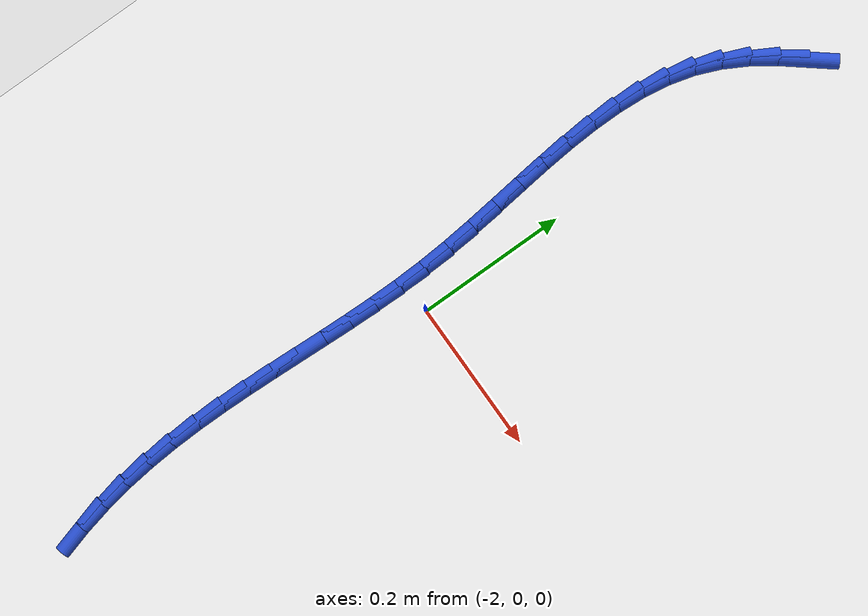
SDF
<sdf version="1.6">
 <world name="default">
  <model name="ground_plane">
   <static>1</static>
   <link name="link">
    <collision name="collision">
     <geometry><plane><normal>0 0 1</normal><size>100 100</size></plane></geometry>
     <surface><friction><ode><mu>100</mu><mu2>50</mu2></ode></friction></surface>
    </collision>
    <visual name="visual">
     <cast_shadows>0</cast_shadows>
     <geometry><plane><normal>0 0 1</normal><size>100 100</size></plane></geometry>
     <material>
      <script><uri>file://media/materials/scripts/gazebo.material</uri><name>Gazebo/WhiteGlow</name></script>
     </material>
    </visual>
   </link>
  </model>
  <model name="line">
   <link name="link_75">
    <pose>-1.9788463276401418 0.5714821334103654 0.01 0 1.57 0.8899620542298988</pose>
    <collision name="collision">
     <geometry><cylinder><radius>0.01</radius><length>0.08</length></cylinder></geometry>
    </collision>
    <visual name="visual">
     <material>
      <script><name>Gazebo/Blue</name><uri>file://media/materials/scripts/gazebo.material</uri></script>
     </material>
     <geometry><cylinder><radius>0.01</radius><length>0.08</length></cylinder></geometry>
    </visual>
   </link>
   <link name="link_76">
    <pose>-2.002225980907993 0.542619865426616 0.01 0 1.57 0.9669139163180537</pose>
    <collision name="collision">
     <geometry><cylinder><radius>0.01</radius><length>0.08</length></cylinder></geometry>
    </collision>
    <visual name="visual">
     <material>
      <script><name>Gazebo/Blue</name><uri>file://media/materials/scripts/gazebo.material</uri></script>
     </material>
     <geometry><cylinder><radius>0.01</radius><length>0.08</length></cylinder></geometry>
    </visual>
   </link>
   <link name="link_77">
    <pose>-2.022808497318645 0.5127837129290429 0.01 0 1.57 1.063695661062746</pose>
    <collision name="collision">
     <geometry><cylinder><radius>0.01</radius><length>0.08</length></cylinder></geometry>
    </collision>
    <visual name="visual">
     <material>
      <script><name>Gazebo/Blue</name><uri>file://media/materials/scripts/gazebo.material</uri></script>
     </material>
     <geometry><cylinder><radius>0.01</radius><length>0.08</length></cylinder></geometry>
    </visual>
   </link>
   <link name="link_78">
    <pose>-2.0400567229537954 0.48173706484929063 0.01 0 1.57 1.180214312019721</pose>
    <collision name="collision">
     <geometry><cylinder><radius>0.01</radius><length>0.08</length></cylinder></geometry>
    </collision>
    <visual name="visual">
     <material>
      <script><name>Gazebo/Blue</name><uri>file://media/materials/scripts/gazebo.material</uri></script>
     </material>
     <geometry><cylinder><radius>0.01</radius><length>0.08</length></cylinder></geometry>
    </visual>
   </link>
   <link name="link_79">
    <pose>-2.053435265761804 0.44924400810427356 0.01 0 1.57 1.3044693716685836</pose>
    <collision name="collision">
     <geometry><cylinder><radius>0.01</radius><length>0.08</length></cylinder></geometry>
    </collision>
    <visual name="visual">
     <material>
      <script><name>Gazebo/Blue</name><uri>file://media/materials/scripts/gazebo.material</uri></script>
     </material>
     <geometry><cylinder><radius>0.01</radius><length>0.08</length></cylinder></geometry>
    </visual>
   </link>
   <link name="link_80">
    <pose>-2.0627244522830046 0.4151937054362903 0.01 0 1.57 1.412522554717471</pose>
    <collision name="collision">
     <geometry><cylinder><radius>0.01</radius><length>0.08</length></cylinder></geometry>
    </collision>
    <visual name="visual">
     <material>
      <script><name>Gazebo/Blue</name><uri>file://media/materials/scripts/gazebo.material</uri></script>
     </material>
     <geometry><cylinder><radius>0.01</radius><length>0.08</length></cylinder></geometry>
    </visual>
   </link>
   <link name="link_81">
    <pose>-2.068382552778238 0.37974389537811276 0.01 0 1.57 1.5007183481354398</pose>
    <collision name="collision">
     <geometry><cylinder><radius>0.01</radius><length>0.08</length></cylinder></geometry>
    </collision>
    <visual name="visual">
     <material>
      <script><name>Gazebo/Blue</name><uri>file://media/materials/scripts/gazebo.material</uri></script>
     </material>
     <geometry><cylinder><radius>0.01</radius><length>0.08</length></cylinder></geometry>
    </visual>
   </link>
   <link name="link_82">
    <pose>-2.0709556013346364 0.343087085187862 0.01 0 1.57 1.5698929681991656</pose>
    <collision name="collision">
     <geometry><cylinder><radius>0.01</radius><length>0.08</length></cylinder></geometry>
    </collision>
    <visual name="visual">
     <material>
      <script><name>Gazebo/Blue</name><uri>file://media/materials/scripts/gazebo.material</uri></script>
     </material>
     <geometry><cylinder><radius>0.01</radius><length>0.08</length></cylinder></geometry>
    </visual>
   </link>
   <link name="link_83">
    <pose>-2.070989632039329 0.30541578212365894 0.01 0 1.57 -1.5199494232117647</pose>
    <collision name="collision">
     <geometry><cylinder><radius>0.01</radius><length>0.08</length></cylinder></geometry>
    </collision>
    <visual name="visual">
     <material>
      <script><name>Gazebo/Blue</name><uri>file://media/materials/scripts/gazebo.material</uri></script>
     </material>
     <geometry><cylinder><radius>0.01</radius><length>0.08</length></cylinder></geometry>
    </visual>
   </link>
   <link name="link_84">
    <pose>-2.0690306789794493 0.2669224934436255 0.01 0 1.57 -1.4839584675421924</pose>
    <collision name="collision">
     <geometry><cylinder><radius>0.01</radius><length>0.08</length></cylinder></geometry>
    </collision>
    <visual name="visual">
     <material>
      <script><name>Gazebo/Blue</name><uri>file://media/materials/scripts/gazebo.material</uri></script>
     </material>
     <geometry><cylinder><radius>0.01</radius><length>0.08</length></cylinder></geometry>
    </visual>
   </link>
   <link name="link_85">
    <pose>-2.0656247762421285 0.22779972640588225 0.01 0 1.57 -1.4623546853439038</pose>
    <collision name="collision">
     <geometry><cylinder><radius>0.01</radius><length>0.08</length></cylinder></geometry>
    </collision>
    <visual name="visual">
     <material>
      <script><name>Gazebo/Blue</name><uri>file://media/materials/scripts/gazebo.material</uri></script>
     </material>
     <geometry><cylinder><radius>0.01</radius><length>0.08</length></cylinder></geometry>
    </visual>
   </link>
   <link name="link_86">
    <pose>-2.0613179579144973 0.18823998826855123 0.01 0 1.57 -1.4542116485671366</pose>
    <collision name="collision">
     <geometry><cylinder><radius>0.01</radius><length>0.08</length></cylinder></geometry>
    </collision>
    <visual name="visual">
     <material>
      <script><name>Gazebo/Blue</name><uri>file://media/materials/scripts/gazebo.material</uri></script>
     </material>
     <geometry><cylinder><radius>0.01</radius><length>0.08</length></cylinder></geometry>
    </visual>
   </link>
   <link name="link_87">
    <pose>-2.0566562580836885 0.1484357862897533 0.01 0 1.57 -1.4590961772638547</pose>
    <collision name="collision">
     <geometry><cylinder><radius>0.01</radius><length>0.08</length></cylinder></geometry>
    </collision>
    <visual name="visual">
     <material>
      <script><name>Gazebo/Blue</name><uri>file://media/materials/scripts/gazebo.material</uri></script>
     </material>
     <geometry><cylinder><radius>0.01</radius><length>0.08</length></cylinder></geometry>
    </visual>
   </link>
   <link name="link_88">
    <pose>-2.0521857108368318 0.10857962772760929 0.01 0 1.57 -1.4770693975414164</pose>
    <collision name="collision">
     <geometry><cylinder><radius>0.01</radius><length>0.08</length></cylinder></geometry>
    </collision>
    <visual name="visual">
     <material>
      <script><name>Gazebo/Blue</name><uri>file://media/materials/scripts/gazebo.material</uri></script>
     </material>
     <geometry><cylinder><radius>0.01</radius><length>0.08</length></cylinder></geometry>
    </visual>
   </link>
   <link name="link_89">
    <pose>-2.0484523502610594 0.06886401984024126 0.01 0 1.57 -1.508317831723412</pose>
    <collision name="collision">
     <geometry><cylinder><radius>0.01</radius><length>0.08</length></cylinder></geometry>
    </collision>
    <visual name="visual">
     <material>
      <script><name>Gazebo/Blue</name><uri>file://media/materials/scripts/gazebo.material</uri></script>
     </material>
     <geometry><cylinder><radius>0.01</radius><length>0.08</length></cylinder></geometry>
    </visual>
   </link>
   <link name="link_90">
    <pose>-2.0459883268093058 0.029477404367561195 0.01 0 1.57 -1.54402767362524</pose>
    <collision name="collision">
     <geometry><cylinder><radius>0.01</radius><length>0.08</length></cylinder></geometry>
    </collision>
    <visual name="visual">
     <material>
      <script><name>Gazebo/Blue</name><uri>file://media/materials/scripts/gazebo.material</uri></script>
     </material>
     <geometry><cylinder><radius>0.01</radius><length>0.08</length></cylinder></geometry>
    </visual>
   </link>
   <link name="link_91">
    <pose>-2.0449446139701166 -0.009503396276370861 0.01 0 1.57 1.567987165825125</pose>
    <collision name="collision">
     <geometry><cylinder><radius>0.01</radius><length>0.08</length></cylinder></geometry>
    </collision>
    <visual name="visual">
     <material>
      <script><name>Gazebo/Blue</name><uri>file://media/materials/scripts/gazebo.material</uri></script>
     </material>
     <geometry><cylinder><radius>0.01</radius><length>0.08</length></cylinder></geometry>
    </visual>
   </link>
   <link name="link_92">
    <pose>-2.045053106528209 -0.04812427769765665 0.01 0 1.57 1.5454551702174715</pose>
    <collision name="collision">
     <geometry><cylinder><radius>0.01</radius><length>0.08</length></cylinder></geometry>
    </collision>
    <visual name="visual">
     <material>
      <script><name>Gazebo/Blue</name><uri>file://media/materials/scripts/gazebo.material</uri></script>
     </material>
     <geometry><cylinder><radius>0.01</radius><length>0.08</length></cylinder></geometry>
    </visual>
   </link>
   <link name="link_93">
    <pose>-2.0460242139262927 -0.08643742701425138 0.01 0 1.57 1.5302450303805055</pose>
    <collision name="collision">
     <geometry><cylinder><radius>0.01</radius><length>0.08</length></cylinder></geometry>
    </collision>
    <visual name="visual">
     <material>
      <script><name>Gazebo/Blue</name><uri>file://media/materials/scripts/gazebo.material</uri></script>
     </material>
     <geometry><cylinder><radius>0.01</radius><length>0.08</length></cylinder></geometry>
    </visual>
   </link>
   <link name="link_94">
    <pose>-2.047568345607075 -0.12449503134411263 0.01 0 1.57 1.522554778622991</pose>
    <collision name="collision">
     <geometry><cylinder><radius>0.01</radius><length>0.08</length></cylinder></geometry>
    </collision>
    <visual name="visual">
     <material>
      <script><name>Gazebo/Blue</name><uri>file://media/materials/scripts/gazebo.material</uri></script>
     </material>
     <geometry><cylinder><radius>0.01</radius><length>0.08</length></cylinder></geometry>
    </visual>
   </link>
   <link name="link_95">
    <pose>-2.0493959110132662 -0.16234927780519717 0.01 0 1.57 1.5225245719226421</pose>
    <collision name="collision">
     <geometry><cylinder><radius>0.01</radius><length>0.08</length></cylinder></geometry>
    </collision>
    <visual name="visual">
     <material>
      <script><name>Gazebo/Blue</name><uri>file://media/materials/scripts/gazebo.material</uri></script>
     </material>
     <geometry><cylinder><radius>0.01</radius><length>0.08</length></cylinder></geometry>
    </visual>
   </link>
   <link name="link_96">
    <pose>-2.051217319587576 -0.20005235351546166 0.01 0 1.57 1.5302468861323226</pose>
    <collision name="collision">
     <geometry><cylinder><radius>0.01</radius><length>0.08</length></cylinder></geometry>
    </collision>
    <visual name="visual">
     <material>
      <script><name>Gazebo/Blue</name><uri>file://media/materials/scripts/gazebo.material</uri></script>
     </material>
     <geometry><cylinder><radius>0.01</radius><length>0.08</length></cylinder></geometry>
    </visual>
   </link>
   <link name="link_97">
    <pose>-2.052742980772712 -0.237656445592863 0.01 0 1.57 1.5457645235999604</pose>
    <collision name="collision">
     <geometry><cylinder><radius>0.01</radius><length>0.08</length></cylinder></geometry>
    </collision>
    <visual name="visual">
     <material>
      <script><name>Gazebo/Blue</name><uri>file://media/materials/scripts/gazebo.material</uri></script>
     </material>
     <geometry><cylinder><radius>0.01</radius><length>0.08</length></cylinder></geometry>
    </visual>
   </link>
   <link name="link_98">
    <pose>-2.053683304011384 -0.2752137411553586 0.01 0 1.57 1.569055379181074</pose>
    <collision name="collision">
     <geometry><cylinder><radius>0.01</radius><length>0.08</length></cylinder></geometry>
    </collision>
    <visual name="visual">
     <material>
      <script><name>Gazebo/Blue</name><uri>file://media/materials/scripts/gazebo.material</uri></script>
     </material>
     <geometry><cylinder><radius>0.01</radius><length>0.08</length></cylinder></geometry>
    </visual>
   </link>
   <link name="link_99">
    <pose>-2.053748698746301 -0.3127764273209037 0.01 0 1.57 -1.5415883511357393</pose>
    <collision name="collision">
     <geometry><cylinder><radius>0.01</radius><length>0.08</length></cylinder></geometry>
    </collision>
    <visual name="visual">
     <material>
      <script><name>Gazebo/Blue</name><uri>file://media/materials/scripts/gazebo.material</uri></script>
     </material>
     <geometry><cylinder><radius>0.01</radius><length>0.08</length></cylinder></geometry>
    </visual>
   </link>
   <link name="link_100">
    <pose>-2.0526495744201725 -0.35039669120745603 0.01 0 1.57 -1.5032282042023555</pose>
    <collision name="collision">
     <geometry><cylinder><radius>0.01</radius><length>0.08</length></cylinder></geometry>
    </collision>
    <visual name="visual">
     <material>
      <script><name>Gazebo/Blue</name><uri>file://media/materials/scripts/gazebo.material</uri></script>
     </material>
     <geometry><cylinder><radius>0.01</radius><length>0.08</length></cylinder></geometry>
    </visual>
   </link>
   <link name="link_101">
    <pose>-2.0500963404757075 -0.3881267199329721 0.01 0 1.57 -1.4578791313604378</pose>
    <collision name="collision">
     <geometry><cylinder><radius>0.01</radius><length>0.08</length></cylinder></geometry>
    </collision>
    <visual name="visual">
     <material>
      <script><name>Gazebo/Blue</name><uri>file://media/materials/scripts/gazebo.material</uri></script>
     </material>
     <geometry><cylinder><radius>0.01</radius><length>0.08</length></cylinder></geometry>
    </visual>
   </link>
   <link name="link_102">
    <pose>-2.0457994063556146 -0.4260187006154088 0.01 0 1.57 -1.406186819943487</pose>
    <collision name="collision">
     <geometry><cylinder><radius>0.01</radius><length>0.08</length></cylinder></geometry>
    </collision>
    <visual name="visual">
     <material>
      <script><name>Gazebo/Blue</name><uri>file://media/materials/scripts/gazebo.material</uri></script>
     </material>
     <geometry><cylinder><radius>0.01</radius><length>0.08</length></cylinder></geometry>
    </visual>
   </link>
   <link name="link_103">
    <pose>-2.039469622808962 -0.46412408655495135 0.01 0 1.57 -1.3502683179236505</pose>
    <collision name="collision">
     <geometry><cylinder><radius>0.01</radius><length>0.08</length></cylinder></geometry>
    </collision>
    <visual name="visual">
     <material>
      <script><name>Gazebo/Blue</name><uri>file://media/materials/scripts/gazebo.material</uri></script>
     </material>
     <geometry><cylinder><radius>0.01</radius><length>0.08</length></cylinder></geometry>
    </visual>
   </link>
   <link name="link_104">
    <pose>-2.03089783413852 -0.5023613153129597 0.01 0 1.57 -1.2926607966115233</pose>
    <collision name="collision">
     <geometry><cylinder><radius>0.01</radius><length>0.08</length></cylinder></geometry>
    </collision>
    <visual name="visual">
     <material>
      <script><name>Gazebo/Blue</name><uri>file://media/materials/scripts/gazebo.material</uri></script>
     </material>
     <geometry><cylinder><radius>0.01</radius><length>0.08</length></cylinder></geometry>
    </visual>
   </link>
  </model>
 </world>
</sdf>
